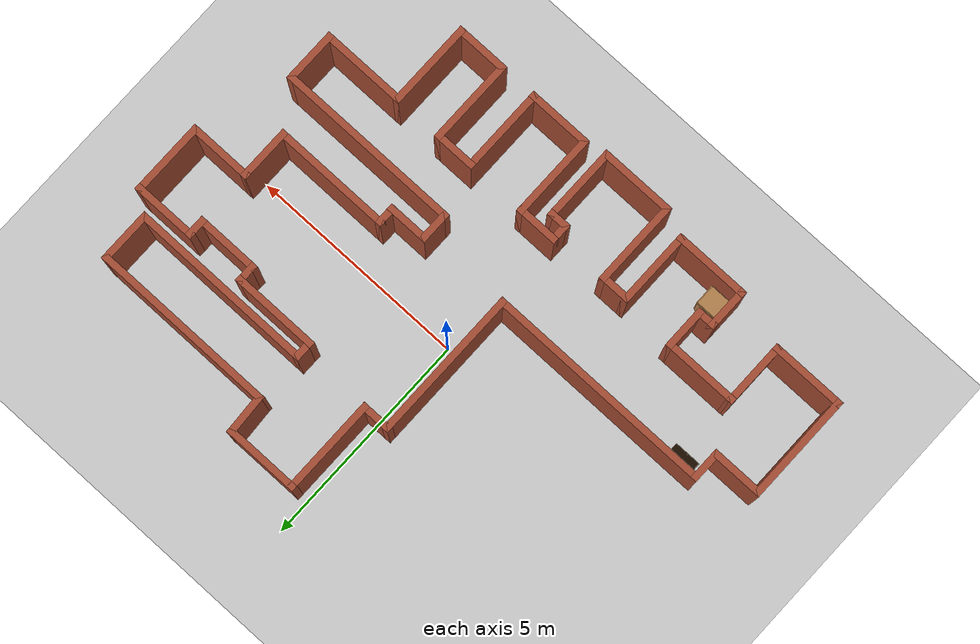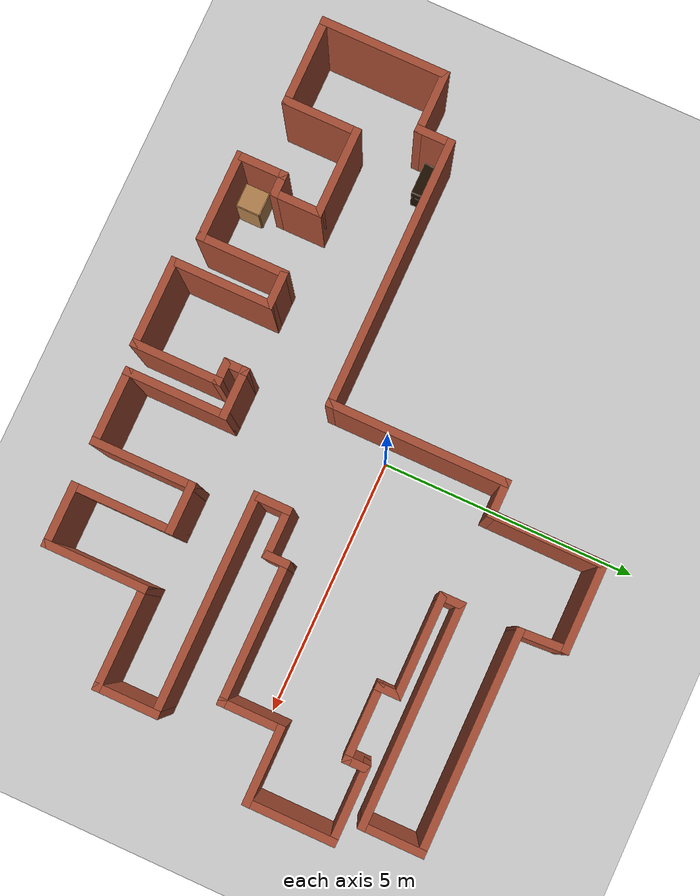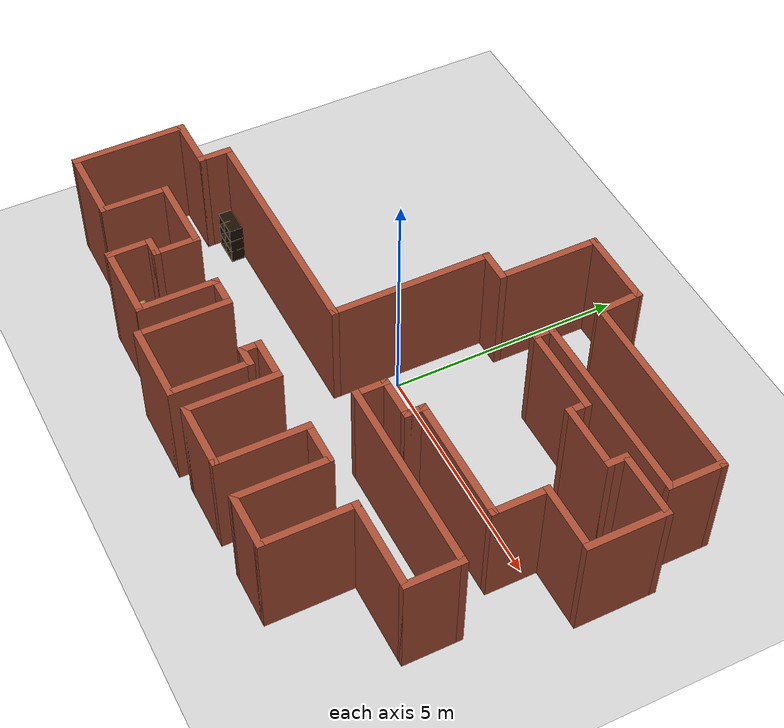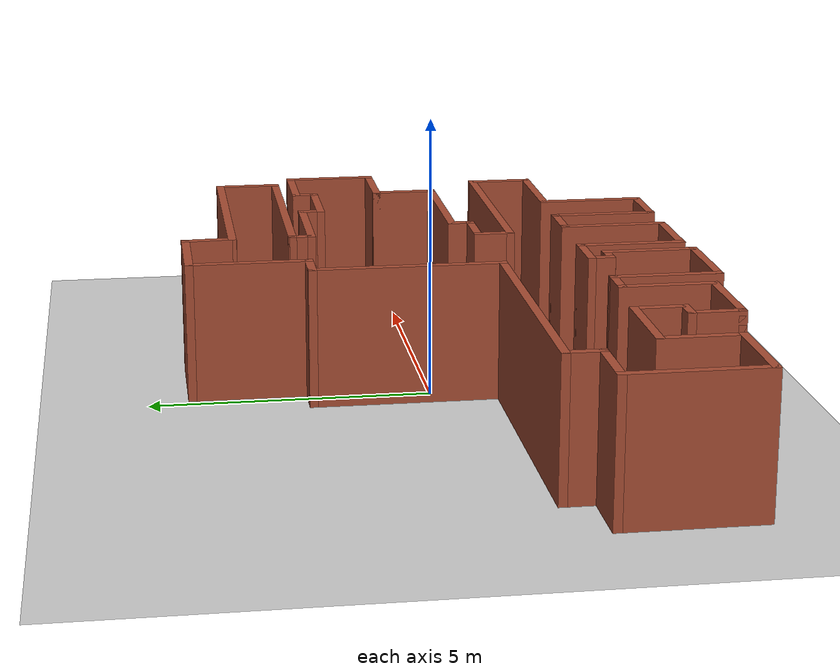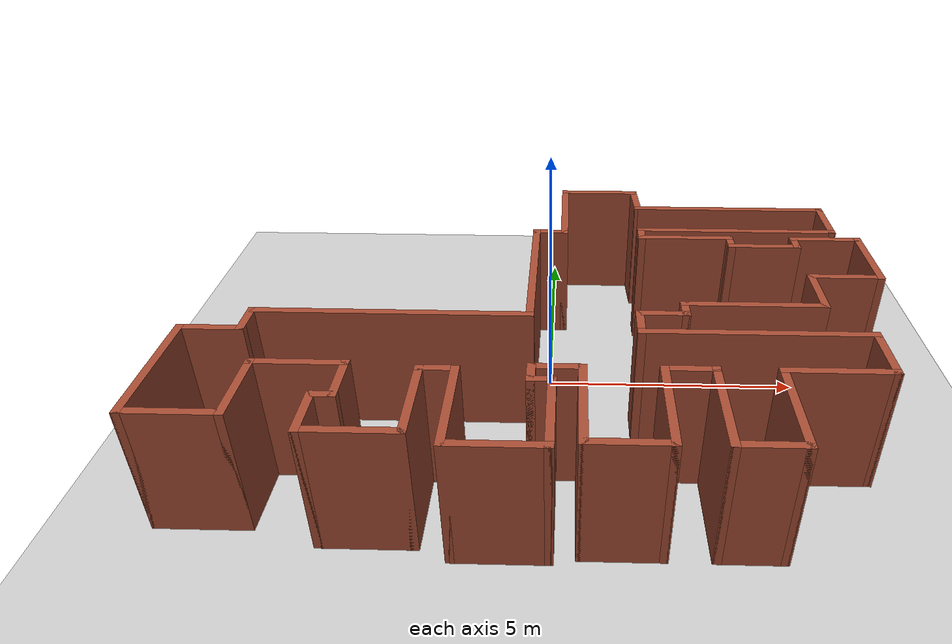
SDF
<sdf version="1.6">
 <world name="default">
  <model name="ground_plane">
   <static>1</static>
   <link name="link">
    <collision name="collision">
     <geometry><plane><normal>0 0 1</normal><size>100 100</size></plane></geometry>
     <surface>
      <contact><collide_bitmask>65535</collide_bitmask></contact>
      <friction><ode><mu>100</mu><mu2>50</mu2></ode></friction>
     </surface>
    </collision>
    <visual name="visual">
     <cast_shadows>0</cast_shadows>
     <geometry><plane><normal>0 0 1</normal><size>100 100</size></plane></geometry>
     <material>
      <script><uri>file://media/materials/scripts/gazebo.material</uri><name>Gazebo/Grey</name></script>
     </material>
    </visual>
   </link>
  </model>
  <model name="map_65">
   <pose>-0.051528 -0.276745 0 0 -0 0</pose>
   <link name="Wall_0">
    <collision name="Wall_0_Collision">
     <geometry><box><size>1.75 0.15 2.5</size></box></geometry>
     <pose>0 0 1.25 0 -0 0</pose>
    </collision>
    <visual name="Wall_0_Visual">
     <pose>0 0 1.25 0 -0 0</pose>
     <geometry><box><size>1.75 0.15 2.5</size></box></geometry>
     <material>
      <script><uri>file://media/materials/scripts/gazebo.material</uri><name>Gazebo/Bricks</name></script>
      <ambient>1 1 1 1</ambient>
     </material>
     <meta><layer>0</layer></meta>
    </visual>
    <pose>1.1 4.49786 0 0 -0 3.14159</pose>
   </link>
   <link name="Wall_1">
    <collision name="Wall_1_Collision">
     <geometry><box><size>2.25 0.15 2.5</size></box></geometry>
     <pose>0 0 1.25 0 -0 0</pose>
    </collision>
    <visual name="Wall_1_Visual">
     <pose>0 0 1.25 0 -0 0</pose>
     <geometry><box><size>2.25 0.15 2.5</size></box></geometry>
     <material>
      <script><uri>file://media/materials/scripts/gazebo.material</uri><name>Gazebo/Bricks</name></script>
      <ambient>1 1 1 1</ambient>
     </material>
     <meta><layer>0</layer></meta>
    </visual>
    <pose>0.3 3.44786 0 0 -0 -1.5708</pose>
   </link>
   <link name="Wall_10">
    <collision name="Wall_10_Collision">
     <geometry><box><size>1.75 0.15 2.5</size></box></geometry>
     <pose>0 0 1.25 0 -0 0</pose>
    </collision>
    <visual name="Wall_10_Visual">
     <pose>0 0 1.25 0 -0 0</pose>
     <geometry><box><size>1.75 0.15 2.5</size></box></geometry>
     <material>
      <script><uri>file://media/materials/scripts/gazebo.material</uri><name>Gazebo/Bricks</name></script>
      <ambient>1 1 1 1</ambient>
     </material>
     <meta><layer>0</layer></meta>
    </visual>
    <pose>-5.7 -3.90214 0 0 -0 0</pose>
   </link>
   <link name="Wall_11">
    <collision name="Wall_11_Collision">
     <geometry><box><size>1.5 0.15 2.5</size></box></geometry>
     <pose>0 0 1.25 0 -0 0</pose>
    </collision>
    <visual name="Wall_11_Visual">
     <pose>0 0 1.25 0 -0 0</pose>
     <geometry><box><size>1.5 0.15 2.5</size></box></geometry>
     <material>
      <script><uri>file://media/materials/scripts/gazebo.material</uri><name>Gazebo/Bricks</name></script>
      <ambient>1 1 1 1</ambient>
     </material>
     <meta><layer>0</layer></meta>
    </visual>
    <pose>-4.9 -3.22714 0 0 -0 1.5708</pose>
   </link>
   <link name="Wall_12">
    <collision name="Wall_12_Collision">
     <geometry><box><size>1.75 0.15 2.5</size></box></geometry>
     <pose>0 0 1.25 0 -0 0</pose>
    </collision>
    <visual name="Wall_12_Visual">
     <pose>0 0 1.25 0 -0 0</pose>
     <geometry><box><size>1.75 0.15 2.5</size></box></geometry>
     <material>
      <script><uri>file://media/materials/scripts/gazebo.material</uri><name>Gazebo/Bricks</name></script>
      <ambient>1 1 1 1</ambient>
     </material>
     <meta><layer>0</layer></meta>
    </visual>
    <pose>-4.1 -2.55214 0 0 -0 0</pose>
   </link>
   <link name="Wall_13">
    <collision name="Wall_13_Collision">
     <geometry><box><size>1 0.15 2.5</size></box></geometry>
     <pose>0 0 1.25 0 -0 0</pose>
    </collision>
    <visual name="Wall_13_Visual">
     <pose>0 0 1.25 0 -0 0</pose>
     <geometry><box><size>1 0.15 2.5</size></box></geometry>
     <material>
      <script><uri>file://media/materials/scripts/gazebo.material</uri><name>Gazebo/Bricks</name></script>
      <ambient>1 1 1 1</ambient>
     </material>
     <meta><layer>0</layer></meta>
    </visual>
    <pose>-3.3 -2.97714 0 0 -0 -1.5708</pose>
   </link>
   <link name="Wall_14">
    <collision name="Wall_14_Collision">
     <geometry><box><size>0.5 0.15 2.5</size></box></geometry>
     <pose>0 0 1.25 0 -0 0</pose>
    </collision>
    <visual name="Wall_14_Visual">
     <pose>0 0 1.25 0 -0 0</pose>
     <geometry><box><size>0.5 0.15 2.5</size></box></geometry>
     <material>
      <script><uri>file://media/materials/scripts/gazebo.material</uri><name>Gazebo/Bricks</name></script>
      <ambient>1 1 1 1</ambient>
     </material>
     <meta><layer>0</layer></meta>
    </visual>
    <pose>-3.475 -3.40214 0 0 -0 3.14159</pose>
   </link>
   <link name="Wall_15">
    <collision name="Wall_15_Collision">
     <geometry><box><size>1 0.15 2.5</size></box></geometry>
     <pose>0 0 1.25 0 -0 0</pose>
    </collision>
    <visual name="Wall_15_Visual">
     <pose>0 0 1.25 0 -0 0</pose>
     <geometry><box><size>1 0.15 2.5</size></box></geometry>
     <material>
      <script><uri>file://media/materials/scripts/gazebo.material</uri><name>Gazebo/Bricks</name></script>
      <ambient>1 1 1 1</ambient>
     </material>
     <meta><layer>0</layer></meta>
    </visual>
    <pose>-3.65 -3.82714 0 0 -0 -1.5708</pose>
   </link>
   <link name="Wall_16">
    <collision name="Wall_16_Collision">
     <geometry><box><size>1.75 0.15 2.5</size></box></geometry>
     <pose>0 0 1.25 0 -0 0</pose>
    </collision>
    <visual name="Wall_16_Visual">
     <pose>0 0 1.25 0 -0 0</pose>
     <geometry><box><size>1.75 0.15 2.5</size></box></geometry>
     <material>
      <script><uri>file://media/materials/scripts/gazebo.material</uri><name>Gazebo/Bricks</name></script>
      <ambient>1 1 1 1</ambient>
     </material>
     <meta><layer>0</layer></meta>
    </visual>
    <pose>-2.85 -4.25214 0 0 -0 0</pose>
   </link>
   <link name="Wall_17">
    <collision name="Wall_17_Collision">
     <geometry><box><size>1.75 0.15 2.5</size></box></geometry>
     <pose>0 0 1.25 0 -0 0</pose>
    </collision>
    <visual name="Wall_17_Visual">
     <pose>0 0 1.25 0 -0 0</pose>
     <geometry><box><size>1.75 0.15 2.5</size></box></geometry>
     <material>
      <script><uri>file://media/materials/scripts/gazebo.material</uri><name>Gazebo/Bricks</name></script>
      <ambient>1 1 1 1</ambient>
     </material>
     <meta><layer>0</layer></meta>
    </visual>
    <pose>-2.05 -3.45214 0 0 -0 1.5708</pose>
   </link>
   <link name="Wall_18">
    <collision name="Wall_18_Collision">
     <geometry><box><size>0.75 0.15 2.5</size></box></geometry>
     <pose>0 0 1.25 0 -0 0</pose>
    </collision>
    <visual name="Wall_18_Visual">
     <pose>0 0 1.25 0 -0 0</pose>
     <geometry><box><size>0.75 0.15 2.5</size></box></geometry>
     <material>
      <script><uri>file://media/materials/scripts/gazebo.material</uri><name>Gazebo/Bricks</name></script>
      <ambient>1 1 1 1</ambient>
     </material>
     <meta><layer>0</layer></meta>
    </visual>
    <pose>-1.75 -2.65214 0 0 -0 0</pose>
   </link>
   <link name="Wall_19">
    <collision name="Wall_19_Collision">
     <geometry><box><size>2 0.15 2.5</size></box></geometry>
     <pose>0 0 1.25 0 -0 0</pose>
    </collision>
    <visual name="Wall_19_Visual">
     <pose>0 0 1.25 0 -0 0</pose>
     <geometry><box><size>2 0.15 2.5</size></box></geometry>
     <material>
      <script><uri>file://media/materials/scripts/gazebo.material</uri><name>Gazebo/Bricks</name></script>
      <ambient>1 1 1 1</ambient>
     </material>
     <meta><layer>0</layer></meta>
    </visual>
    <pose>-1.45 -3.57714 0 0 -0 -1.5708</pose>
   </link>
   <link name="Wall_2">
    <collision name="Wall_2_Collision">
     <geometry><box><size>0.75 0.15 2.5</size></box></geometry>
     <pose>0 0 1.25 0 -0 0</pose>
    </collision>
    <visual name="Wall_2_Visual">
     <pose>0 0 1.25 0 -0 0</pose>
     <geometry><box><size>0.75 0.15 2.5</size></box></geometry>
     <material>
      <script><uri>file://media/materials/scripts/gazebo.material</uri><name>Gazebo/Bricks</name></script>
      <ambient>1 1 1 1</ambient>
     </material>
     <meta><layer>0</layer></meta>
    </visual>
    <pose>-0 2.39786 0 0 -0 3.14159</pose>
   </link>
   <link name="Wall_20">
    <collision name="Wall_20_Collision">
     <geometry><box><size>1.75 0.15 2.5</size></box></geometry>
     <pose>0 0 1.25 0 -0 0</pose>
    </collision>
    <visual name="Wall_20_Visual">
     <pose>0 0 1.25 0 -0 0</pose>
     <geometry><box><size>1.75 0.15 2.5</size></box></geometry>
     <material>
      <script><uri>file://media/materials/scripts/gazebo.material</uri><name>Gazebo/Bricks</name></script>
      <ambient>1 1 1 1</ambient>
     </material>
     <meta><layer>0</layer></meta>
    </visual>
    <pose>-0.65 -4.50214 0 0 -0 0</pose>
   </link>
   <link name="Wall_21">
    <collision name="Wall_21_Collision">
     <geometry><box><size>1.75 0.15 2.5</size></box></geometry>
     <pose>0 0 1.25 0 -0 0</pose>
    </collision>
    <visual name="Wall_21_Visual">
     <pose>0 0 1.25 0 -0 0</pose>
     <geometry><box><size>1.75 0.15 2.5</size></box></geometry>
     <material>
      <script><uri>file://media/materials/scripts/gazebo.material</uri><name>Gazebo/Bricks</name></script>
      <ambient>1 1 1 1</ambient>
     </material>
     <meta><layer>0</layer></meta>
    </visual>
    <pose>0.15 -3.70214 0 0 -0 1.5708</pose>
   </link>
   <link name="Wall_22">
    <collision name="Wall_22_Collision">
     <geometry><box><size>0.5 0.15 2.5</size></box></geometry>
     <pose>0 0 1.25 0 -0 0</pose>
    </collision>
    <visual name="Wall_22_Visual">
     <pose>0 0 1.25 0 -0 0</pose>
     <geometry><box><size>0.5 0.15 2.5</size></box></geometry>
     <material>
      <script><uri>file://media/materials/scripts/gazebo.material</uri><name>Gazebo/Bricks</name></script>
      <ambient>1 1 1 1</ambient>
     </material>
     <meta><layer>0</layer></meta>
    </visual>
    <pose>-0.025 -2.90214 0 0 -0 3.14159</pose>
   </link>
   <link name="Wall_23">
    <collision name="Wall_23_Collision">
     <geometry><box><size>0.5 0.15 2.5</size></box></geometry>
     <pose>0 0 1.25 0 -0 0</pose>
    </collision>
    <visual name="Wall_23_Visual">
     <pose>0 0 1.25 0 -0 0</pose>
     <geometry><box><size>0.5 0.15 2.5</size></box></geometry>
     <material>
      <script><uri>file://media/materials/scripts/gazebo.material</uri><name>Gazebo/Bricks</name></script>
      <ambient>1 1 1 1</ambient>
     </material>
     <meta><layer>0</layer></meta>
    </visual>
    <pose>-0.2 -2.72714 0 0 -0 1.5708</pose>
   </link>
   <link name="Wall_24">
    <collision name="Wall_24_Collision">
     <geometry><box><size>1 0.15 2.5</size></box></geometry>
     <pose>0 0 1.25 0 -0 0</pose>
    </collision>
    <visual name="Wall_24_Visual">
     <pose>0 0 1.25 0 -0 0</pose>
     <geometry><box><size>1 0.15 2.5</size></box></geometry>
     <material>
      <script><uri>file://media/materials/scripts/gazebo.material</uri><name>Gazebo/Bricks</name></script>
      <ambient>1 1 1 1</ambient>
     </material>
     <meta><layer>0</layer></meta>
    </visual>
    <pose>0.225 -2.55214 0 0 -0 0</pose>
   </link>
   <link name="Wall_25">
    <collision name="Wall_25_Collision">
     <geometry><box><size>2 0.15 2.5</size></box></geometry>
     <pose>0 0 1.25 0 -0 0</pose>
    </collision>
    <visual name="Wall_25_Visual">
     <pose>0 0 1.25 0 -0 0</pose>
     <geometry><box><size>2 0.15 2.5</size></box></geometry>
     <material>
      <script><uri>file://media/materials/scripts/gazebo.material</uri><name>Gazebo/Bricks</name></script>
      <ambient>1 1 1 1</ambient>
     </material>
     <meta><layer>0</layer></meta>
    </visual>
    <pose>0.65 -3.47714 0 0 -0 -1.5708</pose>
   </link>
   <link name="Wall_26">
    <collision name="Wall_26_Collision">
     <geometry><box><size>1.5 0.15 2.5</size></box></geometry>
     <pose>0 0 1.25 0 -0 0</pose>
    </collision>
    <visual name="Wall_26_Visual">
     <pose>0 0 1.25 0 -0 0</pose>
     <geometry><box><size>1.5 0.15 2.5</size></box></geometry>
     <material>
      <script><uri>file://media/materials/scripts/gazebo.material</uri><name>Gazebo/Bricks</name></script>
      <ambient>1 1 1 1</ambient>
     </material>
     <meta><layer>0</layer></meta>
    </visual>
    <pose>1.325 -4.40214 0 0 -0 0</pose>
   </link>
   <link name="Wall_27">
    <collision name="Wall_27_Collision">
     <geometry><box><size>2 0.15 2.5</size></box></geometry>
     <pose>0 0 1.25 0 -0 0</pose>
    </collision>
    <visual name="Wall_27_Visual">
     <pose>0 0 1.25 0 -0 0</pose>
     <geometry><box><size>2 0.15 2.5</size></box></geometry>
     <material>
      <script><uri>file://media/materials/scripts/gazebo.material</uri><name>Gazebo/Bricks</name></script>
      <ambient>1 1 1 1</ambient>
     </material>
     <meta><layer>0</layer></meta>
    </visual>
    <pose>2 -3.47714 0 0 -0 1.5708</pose>
   </link>
   <link name="Wall_28">
    <collision name="Wall_28_Collision">
     <geometry><box><size>1 0.15 2.5</size></box></geometry>
     <pose>0 0 1.25 0 -0 0</pose>
    </collision>
    <visual name="Wall_28_Visual">
     <pose>0 0 1.25 0 -0 0</pose>
     <geometry><box><size>1 0.15 2.5</size></box></geometry>
     <material>
      <script><uri>file://media/materials/scripts/gazebo.material</uri><name>Gazebo/Bricks</name></script>
      <ambient>1 1 1 1</ambient>
     </material>
     <meta><layer>0</layer></meta>
    </visual>
    <pose>2.425 -2.55214 0 0 -0 0</pose>
   </link>
   <link name="Wall_29">
    <collision name="Wall_29_Collision">
     <geometry><box><size>2 0.15 2.5</size></box></geometry>
     <pose>0 0 1.25 0 -0 0</pose>
    </collision>
    <visual name="Wall_29_Visual">
     <pose>0 0 1.25 0 -0 0</pose>
     <geometry><box><size>2 0.15 2.5</size></box></geometry>
     <material>
      <script><uri>file://media/materials/scripts/gazebo.material</uri><name>Gazebo/Bricks</name></script>
      <ambient>1 1 1 1</ambient>
     </material>
     <meta><layer>0</layer></meta>
    </visual>
    <pose>2.85 -3.47714 0 0 -0 -1.5708</pose>
   </link>
   <link name="Wall_30">
    <collision name="Wall_30_Collision">
     <geometry><box><size>1.25 0.15 2.5</size></box></geometry>
     <pose>0 0 1.25 0 -0 0</pose>
    </collision>
    <visual name="Wall_30_Visual">
     <pose>0 0 1.25 0 -0 0</pose>
     <geometry><box><size>1.25 0.15 2.5</size></box></geometry>
     <material>
      <script><uri>file://media/materials/scripts/gazebo.material</uri><name>Gazebo/Bricks</name></script>
      <ambient>1 1 1 1</ambient>
     </material>
     <meta><layer>0</layer></meta>
    </visual>
    <pose>3.4 -4.40214 0 0 -0 0</pose>
   </link>
   <link name="Wall_31">
    <collision name="Wall_31_Collision">
     <geometry><box><size>2 0.15 2.5</size></box></geometry>
     <pose>0 0 1.25 0 -0 0</pose>
    </collision>
    <visual name="Wall_31_Visual">
     <pose>0 0 1.25 0 -0 0</pose>
     <geometry><box><size>2 0.15 2.5</size></box></geometry>
     <material>
      <script><uri>file://media/materials/scripts/gazebo.material</uri><name>Gazebo/Bricks</name></script>
      <ambient>1 1 1 1</ambient>
     </material>
     <meta><layer>0</layer></meta>
    </visual>
    <pose>3.95 -3.47714 0 0 -0 1.5708</pose>
   </link>
   <link name="Wall_32">
    <collision name="Wall_32_Collision">
     <geometry><box><size>2 0.15 2.5</size></box></geometry>
     <pose>0 0 1.25 0 -0 0</pose>
    </collision>
    <visual name="Wall_32_Visual">
     <pose>0 0 1.25 0 -0 0</pose>
     <geometry><box><size>2 0.15 2.5</size></box></geometry>
     <material>
      <script><uri>file://media/materials/scripts/gazebo.material</uri><name>Gazebo/Bricks</name></script>
      <ambient>1 1 1 1</ambient>
     </material>
     <meta><layer>0</layer></meta>
    </visual>
    <pose>4.875 -2.55214 0 0 -0 0</pose>
   </link>
   <link name="Wall_35">
    <collision name="Wall_35_Collision">
     <geometry><box><size>1.25 0.15 2.5</size></box></geometry>
     <pose>0 0 1.25 0 -0 0</pose>
    </collision>
    <visual name="Wall_35_Visual">
     <pose>0 0 1.25 0 -0 0</pose>
     <geometry><box><size>1.25 0.15 2.5</size></box></geometry>
     <material>
      <script><uri>file://media/materials/scripts/gazebo.material</uri><name>Gazebo/Bricks</name></script>
      <ambient>1 1 1 1</ambient>
     </material>
     <meta><layer>0</layer></meta>
    </visual>
    <pose>5.8 -2.00214 0 0 -0 1.5708</pose>
   </link>
   <link name="Wall_36">
    <collision name="Wall_36_Collision">
     <geometry><box><size>4.25 0.15 2.5</size></box></geometry>
     <pose>0 0 1.25 0 -0 0</pose>
    </collision>
    <visual name="Wall_36_Visual">
     <pose>0 0 1.25 0 -0 0</pose>
     <geometry><box><size>4.25 0.15 2.5</size></box></geometry>
     <material>
      <script><uri>file://media/materials/scripts/gazebo.material</uri><name>Gazebo/Bricks</name></script>
      <ambient>1 1 1 1</ambient>
     </material>
     <meta><layer>0</layer></meta>
    </visual>
    <pose>3.75 -1.45214 0 0 -0 3.14159</pose>
   </link>
   <link name="Wall_37">
    <collision name="Wall_37_Collision">
     <geometry><box><size>0.75 0.15 2.5</size></box></geometry>
     <pose>0 0 1.25 0 -0 0</pose>
    </collision>
    <visual name="Wall_37_Visual">
     <pose>0 0 1.25 0 -0 0</pose>
     <geometry><box><size>0.75 0.15 2.5</size></box></geometry>
     <material>
      <script><uri>file://media/materials/scripts/gazebo.material</uri><name>Gazebo/Bricks</name></script>
      <ambient>1 1 1 1</ambient>
     </material>
     <meta><layer>0</layer></meta>
    </visual>
    <pose>1.7 -1.15214 0 0 -0 1.5708</pose>
   </link>
   <link name="Wall_38">
    <collision name="Wall_38_Collision">
     <geometry><box><size>1 0.15 2.5</size></box></geometry>
     <pose>0 0 1.25 0 -0 0</pose>
    </collision>
    <visual name="Wall_38_Visual">
     <pose>0 0 1.25 0 -0 0</pose>
     <geometry><box><size>1 0.15 2.5</size></box></geometry>
     <material>
      <script><uri>file://media/materials/scripts/gazebo.material</uri><name>Gazebo/Bricks</name></script>
      <ambient>1 1 1 1</ambient>
     </material>
     <meta><layer>0</layer></meta>
    </visual>
    <pose>2.125 -0.852137 0 0 -0 0</pose>
   </link>
   <link name="Wall_39">
    <collision name="Wall_39_Collision">
     <geometry><box><size>0.5 0.15 2.5</size></box></geometry>
     <pose>0 0 1.25 0 -0 0</pose>
    </collision>
    <visual name="Wall_39_Visual">
     <pose>0 0 1.25 0 -0 0</pose>
     <geometry><box><size>0.5 0.15 2.5</size></box></geometry>
     <material>
      <script><uri>file://media/materials/scripts/gazebo.material</uri><name>Gazebo/Bricks</name></script>
      <ambient>1 1 1 1</ambient>
     </material>
     <meta><layer>0</layer></meta>
    </visual>
    <pose>2.55 -0.677137 0 0 -0 1.5708</pose>
   </link>
   <link name="Wall_40">
    <collision name="Wall_40_Collision">
     <geometry><box><size>2.75 0.15 2.5</size></box></geometry>
     <pose>0 0 1.25 0 -0 0</pose>
    </collision>
    <visual name="Wall_40_Visual">
     <pose>0 0 1.25 0 -0 0</pose>
     <geometry><box><size>2.75 0.15 2.5</size></box></geometry>
     <material>
      <script><uri>file://media/materials/scripts/gazebo.material</uri><name>Gazebo/Bricks</name></script>
      <ambient>1 1 1 1</ambient>
     </material>
     <meta><layer>0</layer></meta>
    </visual>
    <pose>3.85 -0.502137 0 0 -0 0</pose>
   </link>
   <link name="Wall_41">
    <collision name="Wall_41_Collision">
     <geometry><box><size>1.25 0.15 2.5</size></box></geometry>
     <pose>0 0 1.25 0 -0 0</pose>
    </collision>
    <visual name="Wall_41_Visual">
     <pose>0 0 1.25 0 -0 0</pose>
     <geometry><box><size>1.25 0.15 2.5</size></box></geometry>
     <material>
      <script><uri>file://media/materials/scripts/gazebo.material</uri><name>Gazebo/Bricks</name></script>
      <ambient>1 1 1 1</ambient>
     </material>
     <meta><layer>0</layer></meta>
    </visual>
    <pose>5.15 0.047863 0 0 -0 1.5708</pose>
   </link>
   <link name="Wall_42">
    <collision name="Wall_42_Collision">
     <geometry><box><size>1.5 0.15 2.5</size></box></geometry>
     <pose>0 0 1.25 0 -0 0</pose>
    </collision>
    <visual name="Wall_42_Visual">
     <pose>0 0 1.25 0 -0 0</pose>
     <geometry><box><size>1.5 0.15 2.5</size></box></geometry>
     <material>
      <script><uri>file://media/materials/scripts/gazebo.material</uri><name>Gazebo/Bricks</name></script>
      <ambient>1 1 1 1</ambient>
     </material>
     <meta><layer>0</layer></meta>
    </visual>
    <pose>5.825 0.597863 0 0 -0 0</pose>
   </link>
   <link name="Wall_43">
    <collision name="Wall_43_Collision">
     <geometry><box><size>1.75 0.15 2.5</size></box></geometry>
     <pose>0 0 1.25 0 -0 0</pose>
    </collision>
    <visual name="Wall_43_Visual">
     <pose>0 0 1.25 0 -0 0</pose>
     <geometry><box><size>1.75 0.15 2.5</size></box></geometry>
     <material>
      <script><uri>file://media/materials/scripts/gazebo.material</uri><name>Gazebo/Bricks</name></script>
      <ambient>1 1 1 1</ambient>
     </material>
     <meta><layer>0</layer></meta>
    </visual>
    <pose>6.5 1.39786 0 0 -0 1.5708</pose>
   </link>
   <link name="Wall_44">
    <collision name="Wall_44_Collision">
     <geometry><box><size>1.5 0.15 2.5</size></box></geometry>
     <pose>0 0 1.25 0 -0 0</pose>
    </collision>
    <visual name="Wall_44_Visual">
     <pose>0 0 1.25 0 -0 0</pose>
     <geometry><box><size>1.5 0.15 2.5</size></box></geometry>
     <material>
      <script><uri>file://media/materials/scripts/gazebo.material</uri><name>Gazebo/Bricks</name></script>
      <ambient>1 1 1 1</ambient>
     </material>
     <meta><layer>0</layer></meta>
    </visual>
    <pose>5.825 2.19786 0 0 -0 3.14159</pose>
   </link>
   <link name="Wall_45">
    <collision name="Wall_45_Collision">
     <geometry><box><size>0.5 0.15 2.5</size></box></geometry>
     <pose>0 0 1.25 0 -0 0</pose>
    </collision>
    <visual name="Wall_45_Visual">
     <pose>0 0 1.25 0 -0 0</pose>
     <geometry><box><size>0.5 0.15 2.5</size></box></geometry>
     <material>
      <script><uri>file://media/materials/scripts/gazebo.material</uri><name>Gazebo/Bricks</name></script>
      <ambient>1 1 1 1</ambient>
     </material>
     <meta><layer>0</layer></meta>
    </visual>
    <pose>5.15 2.02286 0 0 -0 -1.5708</pose>
   </link>
   <link name="Wall_46">
    <collision name="Wall_46_Collision">
     <geometry><box><size>1.5 0.15 2.5</size></box></geometry>
     <pose>0 0 1.25 0 -0 0</pose>
    </collision>
    <visual name="Wall_46_Visual">
     <pose>0 0 1.25 0 -0 0</pose>
     <geometry><box><size>1.5 0.15 2.5</size></box></geometry>
     <material>
      <script><uri>file://media/materials/scripts/gazebo.material</uri><name>Gazebo/Bricks</name></script>
      <ambient>1 1 1 1</ambient>
     </material>
     <meta><layer>0</layer></meta>
    </visual>
    <pose>4.475 1.84786 0 0 -0 3.14159</pose>
   </link>
   <link name="Wall_47">
    <collision name="Wall_47_Collision">
     <geometry><box><size>0.5 0.15 2.5</size></box></geometry>
     <pose>0 0 1.25 0 -0 0</pose>
    </collision>
    <visual name="Wall_47_Visual">
     <pose>0 0 1.25 0 -0 0</pose>
     <geometry><box><size>0.5 0.15 2.5</size></box></geometry>
     <material>
      <script><uri>file://media/materials/scripts/gazebo.material</uri><name>Gazebo/Bricks</name></script>
      <ambient>1 1 1 1</ambient>
     </material>
     <meta><layer>0</layer></meta>
    </visual>
    <pose>3.8 2.02286 0 0 -0 1.5708</pose>
   </link>
   <link name="Wall_48">
    <collision name="Wall_48_Collision">
     <geometry><box><size>2 0.15 2.5</size></box></geometry>
     <pose>0 0 1.25 0 -0 0</pose>
    </collision>
    <visual name="Wall_48_Visual">
     <pose>0 0 1.25 0 -0 0</pose>
     <geometry><box><size>2 0.15 2.5</size></box></geometry>
     <material>
      <script><uri>file://media/materials/scripts/gazebo.material</uri><name>Gazebo/Bricks</name></script>
      <ambient>1 1 1 1</ambient>
     </material>
     <meta><layer>0</layer></meta>
    </visual>
    <pose>2.875 2.19786 0 0 -0 3.14159</pose>
   </link>
   <link name="Wall_49">
    <collision name="Wall_49_Collision">
     <geometry><box><size>0.5 0.15 2.5</size></box></geometry>
     <pose>0 0 1.25 0 -0 0</pose>
    </collision>
    <visual name="Wall_49_Visual">
     <pose>0 0 1.25 0 -0 0</pose>
     <geometry><box><size>0.5 0.15 2.5</size></box></geometry>
     <material>
      <script><uri>file://media/materials/scripts/gazebo.material</uri><name>Gazebo/Bricks</name></script>
      <ambient>1 1 1 1</ambient>
     </material>
     <meta><layer>0</layer></meta>
    </visual>
    <pose>1.95 2.37286 0 0 -0 1.5708</pose>
   </link>
   <link name="Wall_5">
    <collision name="Wall_5_Collision">
     <geometry><box><size>3.5 0.15 2.5</size></box></geometry>
     <pose>0 0 1.25 0 -0 0</pose>
    </collision>
    <visual name="Wall_5_Visual">
     <pose>0 0 1.25 0 -0 0</pose>
     <geometry><box><size>3.5 0.15 2.5</size></box></geometry>
     <material>
      <script><uri>file://media/materials/scripts/gazebo.material</uri><name>Gazebo/Bricks</name></script>
      <ambient>1 1 1 1</ambient>
     </material>
     <meta><layer>0</layer></meta>
    </visual>
    <pose>-0.3 0.722863 0 0 -0 -1.5708</pose>
   </link>
   <link name="Wall_50">
    <collision name="Wall_50_Collision">
     <geometry><box><size>4.25 0.15 2.5</size></box></geometry>
     <pose>0 0 1.25 0 -0 0</pose>
    </collision>
    <visual name="Wall_50_Visual">
     <pose>0 0 1.25 0 -0 0</pose>
     <geometry><box><size>4.25 0.15 2.5</size></box></geometry>
     <material>
      <script><uri>file://media/materials/scripts/gazebo.material</uri><name>Gazebo/Bricks</name></script>
      <ambient>1 1 1 1</ambient>
     </material>
     <meta><layer>0</layer></meta>
    </visual>
    <pose>4 2.54786 0 0 -0 0</pose>
   </link>
   <link name="Wall_51">
    <collision name="Wall_51_Collision">
     <geometry><box><size>1.25 0.15 2.5</size></box></geometry>
     <pose>0 0 1.25 0 -0 0</pose>
    </collision>
    <visual name="Wall_51_Visual">
     <pose>0 0 1.25 0 -0 0</pose>
     <geometry><box><size>1.25 0.15 2.5</size></box></geometry>
     <material>
      <script><uri>file://media/materials/scripts/gazebo.material</uri><name>Gazebo/Bricks</name></script>
      <ambient>1 1 1 1</ambient>
     </material>
     <meta><layer>0</layer></meta>
    </visual>
    <pose>6.05 3.09786 0 0 -0 1.5708</pose>
   </link>
   <link name="Wall_52">
    <collision name="Wall_52_Collision">
     <geometry><box><size>4.25 0.15 2.5</size></box></geometry>
     <pose>0 0 1.25 0 -0 0</pose>
    </collision>
    <visual name="Wall_52_Visual">
     <pose>0 0 1.25 0 -0 0</pose>
     <geometry><box><size>4.25 0.15 2.5</size></box></geometry>
     <material>
      <script><uri>file://media/materials/scripts/gazebo.material</uri><name>Gazebo/Bricks</name></script>
      <ambient>1 1 1 1</ambient>
     </material>
     <meta><layer>0</layer></meta>
    </visual>
    <pose>4 3.64786 0 0 -0 3.14159</pose>
   </link>
   <link name="Wall_53">
    <collision name="Wall_53_Collision">
     <geometry><box><size>1.00147 0.15 2.5</size></box></geometry>
     <pose>0 0 1.25 0 -0 0</pose>
    </collision>
    <visual name="Wall_53_Visual">
     <pose>0 0 1.25 0 -0 0</pose>
     <geometry><box><size>1.00147 0.15 2.5</size></box></geometry>
     <material>
      <script><uri>file://media/materials/scripts/gazebo.material</uri><name>Gazebo/Bricks</name></script>
      <ambient>1 1 1 1</ambient>
     </material>
     <meta><layer>0</layer></meta>
    </visual>
    <pose>1.925 4.07286 0 0 -0 1.62955</pose>
   </link>
   <link name="Wall_6">
    <collision name="Wall_6_Collision">
     <geometry><box><size>5.25 0.15 2.5</size></box></geometry>
     <pose>0 0 1.25 0 -0 0</pose>
    </collision>
    <visual name="Wall_6_Visual">
     <pose>0 0 1.25 0 -0 0</pose>
     <geometry><box><size>5.25 0.15 2.5</size></box></geometry>
     <material>
      <script><uri>file://media/materials/scripts/gazebo.material</uri><name>Gazebo/Bricks</name></script>
      <ambient>1 1 1 1</ambient>
     </material>
     <meta><layer>0</layer></meta>
    </visual>
    <pose>-2.85 -0.952137 0 0 -0 3.14159</pose>
   </link>
   <link name="Wall_7">
    <collision name="Wall_7_Collision">
     <geometry><box><size>0.75 0.15 2.5</size></box></geometry>
     <pose>0 0 1.25 0 -0 0</pose>
    </collision>
    <visual name="Wall_7_Visual">
     <pose>0 0 1.25 0 -0 0</pose>
     <geometry><box><size>0.75 0.15 2.5</size></box></geometry>
     <material>
      <script><uri>file://media/materials/scripts/gazebo.material</uri><name>Gazebo/Bricks</name></script>
      <ambient>1 1 1 1</ambient>
     </material>
     <meta><layer>0</layer></meta>
    </visual>
    <pose>-5.4 -1.25214 0 0 -0 -1.5708</pose>
   </link>
   <link name="Wall_8">
    <collision name="Wall_8_Collision">
     <geometry><box><size>1.25 0.15 2.5</size></box></geometry>
     <pose>0 0 1.25 0 -0 0</pose>
    </collision>
    <visual name="Wall_8_Visual">
     <pose>0 0 1.25 0 -0 0</pose>
     <geometry><box><size>1.25 0.15 2.5</size></box></geometry>
     <material>
      <script><uri>file://media/materials/scripts/gazebo.material</uri><name>Gazebo/Bricks</name></script>
      <ambient>1 1 1 1</ambient>
     </material>
     <meta><layer>0</layer></meta>
    </visual>
    <pose>-5.95 -1.55214 0 0 -0 3.14159</pose>
   </link>
   <link name="Wall_9">
    <collision name="Wall_9_Collision">
     <geometry><box><size>2.5 0.15 2.5</size></box></geometry>
     <pose>0 0 1.25 0 -0 0</pose>
    </collision>
    <visual name="Wall_9_Visual">
     <pose>0 0 1.25 0 -0 0</pose>
     <geometry><box><size>2.5 0.15 2.5</size></box></geometry>
     <material>
      <script><uri>file://media/materials/scripts/gazebo.material</uri><name>Gazebo/Bricks</name></script>
      <ambient>1 1 1 1</ambient>
     </material>
     <meta><layer>0</layer></meta>
    </visual>
    <pose>-6.5 -2.72714 0 0 -0 -1.5708</pose>
   </link>
   <static>1</static>
  </model>
  <model name="6_Cube_StorageE">
   <link name="Wall_0">
    <pose>0 0 0.01 0 -0 0</pose>
    <inertial>
     <mass>1.6201</mass>
     <inertia><ixx>0.0119</ixx><iyy>0.0631</iyy><izz>0.0513</izz><ixy>0</ixy><ixz>0</ixz><iyz>0</iyz></inertia>
    </inertial>
    <collision name="Wall_0_Collision"><geometry><box><size>0.616 0.296 0.02</size></box></geometry></collision>
    <visual name="Wall_0_Visual">
     <geometry><box><size>0.616 0.296 0.02</size></box></geometry>
     <material>
      <script><uri>file://media/materials/scripts/gazebo.material</uri><name>Gazebo/Grey</name></script>
      <ambient>0.105882 0.0509804 0 1</ambient>
     </material>
    </visual>
   </link>
   <joint name="0_2" type="fixed">
    <pose>-0.308 0 0 0 -0 0</pose>
    <parent>Wall_2</parent>
    <child>Wall_0</child>
    <axis>
     <xyz>1 0 0</xyz>
     <use_parent_model_frame>0</use_parent_model_frame>
     <limit><lower>-1e+16</lower><upper>1e+16</upper></limit>
    </axis>
   </joint>
   <joint name="0_12" type="fixed">
    <parent>Wall_12</parent>
    <child>Wall_0</child>
    <axis>
     <xyz>0 0 1</xyz>
     <use_parent_model_frame>0</use_parent_model_frame>
     <limit><lower>-1e+16</lower><upper>1e+16</upper></limit>
    </axis>
   </joint>
   <joint name="0_4" type="fixed">
    <pose>0.308 0 0 0 -0 0</pose>
    <parent>Wall_4</parent>
    <child>Wall_0</child>
    <axis>
     <xyz>1 0 0</xyz>
     <use_parent_model_frame>0</use_parent_model_frame>
     <limit><lower>-1e+16</lower><upper>1e+16</upper></limit>
    </axis>
   </joint>
   <link name="Wall_10">
    <pose>0 0 0.61 0 -0 0</pose>
    <inertial>
     <mass>1.6201</mass>
     <inertia><ixx>0.0119</ixx><iyy>0.0631</iyy><izz>0.0513</izz><ixy>0</ixy><ixz>0</ixz><iyz>0</iyz></inertia>
    </inertial>
    <collision name="Wall_10_Collision"><geometry><box><size>0.616 0.296 0.02</size></box></geometry></collision>
    <visual name="Wall_10_Visual">
     <geometry><box><size>0.616 0.296 0.02</size></box></geometry>
     <material>
      <script><uri>file://media/materials/scripts/gazebo.material</uri><name>Gazebo/Grey</name></script>
      <ambient>0.105882 0.0509804 0 1</ambient>
     </material>
    </visual>
   </link>
   <joint name="10_2" type="fixed">
    <pose>-0.308 0 0 0 -0 0</pose>
    <parent>Wall_2</parent>
    <child>Wall_10</child>
    <axis>
     <xyz>1 0 0</xyz>
     <use_parent_model_frame>0</use_parent_model_frame>
     <limit><lower>-1e+16</lower><upper>1e+16</upper></limit>
    </axis>
   </joint>
   <joint name="10_12" type="fixed">
    <parent>Wall_12</parent>
    <child>Wall_10</child>
    <axis>
     <xyz>0 0 1</xyz>
     <use_parent_model_frame>0</use_parent_model_frame>
     <limit><lower>-1e+16</lower><upper>1e+16</upper></limit>
    </axis>
   </joint>
   <joint name="10_4" type="fixed">
    <pose>0.308 0 0 0 -0 0</pose>
    <parent>Wall_4</parent>
    <child>Wall_10</child>
    <axis>
     <xyz>1 0 0</xyz>
     <use_parent_model_frame>0</use_parent_model_frame>
     <limit><lower>-1e+16</lower><upper>1e+16</upper></limit>
    </axis>
   </joint>
   <link name="Wall_12">
    <pose>0 0 0.4575 0 -0 0</pose>
    <inertial>
     <mass>2.4065</mass>
     <inertia><ixx>0.0177</ixx><iyy>0.1855</iyy><izz>0.168</izz><ixy>0</ixy><ixz>0</ixz><iyz>0</iyz></inertia>
    </inertial>
    <collision name="Wall_12_Collision"><geometry><box><size>0.02 0.296 0.915</size></box></geometry></collision>
    <visual name="Wall_12_Visual">
     <geometry><box><size>0.02 0.296 0.915</size></box></geometry>
     <material>
      <script><uri>file://media/materials/scripts/gazebo.material</uri><name>Gazebo/Grey</name></script>
      <ambient>0.105882 0.0509804 0 1</ambient>
     </material>
    </visual>
   </link>
   <link name="Wall_2">
    <pose>-0.298 0 0.4575 0 -0 0</pose>
    <inertial>
     <mass>2.4065</mass>
     <inertia><ixx>0.0177</ixx><iyy>0.1855</iyy><izz>0.168</izz><ixy>0</ixy><ixz>0</ixz><iyz>0</iyz></inertia>
    </inertial>
    <collision name="Wall_2_Collision"><geometry><box><size>0.02 0.296 0.915</size></box></geometry></collision>
    <visual name="Wall_2_Visual">
     <geometry><box><size>0.02 0.296 0.915</size></box></geometry>
     <material>
      <script><uri>file://media/materials/scripts/gazebo.material</uri><name>Gazebo/Grey</name></script>
      <ambient>0.105882 0.0509804 0 1</ambient>
     </material>
    </visual>
   </link>
   <link name="Wall_4">
    <pose>0.298 0 0.4575 0 -0 0</pose>
    <inertial>
     <mass>2.4065</mass>
     <inertia><ixx>0.0177</ixx><iyy>0.1855</iyy><izz>0.168</izz><ixy>0</ixy><ixz>0</ixz><iyz>0</iyz></inertia>
    </inertial>
    <collision name="Wall_4_Collision"><geometry><box><size>0.02 0.296 0.915</size></box></geometry></collision>
    <visual name="Wall_4_Visual">
     <geometry><box><size>0.02 0.296 0.915</size></box></geometry>
     <material>
      <script><uri>file://media/materials/scripts/gazebo.material</uri><name>Gazebo/Grey</name></script>
      <ambient>0.105882 0.0509804 0 1</ambient>
     </material>
    </visual>
   </link>
   <link name="Wall_6">
    <pose>0 0 0.905 0 -0 0</pose>
    <inertial>
     <mass>1.6201</mass>
     <inertia><ixx>0.0119</ixx><iyy>0.0631</iyy><izz>0.0513</izz><ixy>0</ixy><ixz>0</ixz><iyz>0</iyz></inertia>
    </inertial>
    <collision name="Wall_6_Collision"><geometry><box><size>0.616 0.296 0.02</size></box></geometry></collision>
    <visual name="Wall_6_Visual">
     <geometry><box><size>0.616 0.296 0.02</size></box></geometry>
     <material>
      <script><uri>file://media/materials/scripts/gazebo.material</uri><name>Gazebo/Grey</name></script>
      <ambient>0.105882 0.0509804 0 1</ambient>
     </material>
    </visual>
   </link>
   <joint name="6_2" type="fixed">
    <pose>-0.308 0 0 0 -0 0</pose>
    <parent>Wall_2</parent>
    <child>Wall_6</child>
    <axis>
     <xyz>2 0 0</xyz>
     <use_parent_model_frame>0</use_parent_model_frame>
     <limit><lower>-1e+16</lower><upper>1e+16</upper></limit>
    </axis>
   </joint>
   <joint name="6_12" type="fixed">
    <parent>Wall_12</parent>
    <child>Wall_6</child>
    <axis>
     <xyz>0 0 1</xyz>
     <use_parent_model_frame>0</use_parent_model_frame>
     <limit><lower>-1e+16</lower><upper>1e+16</upper></limit>
    </axis>
   </joint>
   <joint name="6_4" type="fixed">
    <pose>0.308 0 0 0 -0 0</pose>
    <parent>Wall_4</parent>
    <child>Wall_6</child>
    <axis>
     <xyz>1 0 0</xyz>
     <use_parent_model_frame>0</use_parent_model_frame>
     <limit><lower>-1e+16</lower><upper>1e+16</upper></limit>
    </axis>
   </joint>
   <link name="Wall_8">
    <pose>0 0 0.305 0 -0 0</pose>
    <inertial>
     <mass>1.6201</mass>
     <inertia><ixx>0.0119</ixx><iyy>0.0631</iyy><izz>0.0513</izz><ixy>0</ixy><ixz>0</ixz><iyz>0</iyz></inertia>
    </inertial>
    <collision name="Wall_8_Collision"><geometry><box><size>0.616 0.296 0.02</size></box></geometry></collision>
    <visual name="Wall_8_Visual">
     <geometry><box><size>0.616 0.296 0.02</size></box></geometry>
     <material>
      <script><uri>file://media/materials/scripts/gazebo.material</uri><name>Gazebo/Grey</name></script>
      <ambient>0.105882 0.0509804 0 1</ambient>
     </material>
    </visual>
   </link>
   <joint name="8_2" type="fixed">
    <pose>-0.308 0 0 0 -0 0</pose>
    <parent>Wall_2</parent>
    <child>Wall_8</child>
    <axis>
     <xyz>1 0 0</xyz>
     <use_parent_model_frame>0</use_parent_model_frame>
     <limit><lower>-1e+16</lower><upper>1e+16</upper></limit>
    </axis>
   </joint>
   <joint name="8_12" type="fixed">
    <parent>Wall_12</parent>
    <child>Wall_8</child>
    <axis>
     <xyz>0 0 1</xyz>
     <use_parent_model_frame>0</use_parent_model_frame>
     <limit><lower>-1e+16</lower><upper>1e+16</upper></limit>
    </axis>
   </joint>
   <joint name="8_4" type="fixed">
    <pose>0.308 0 0 0 -0 0</pose>
    <parent>Wall_4</parent>
    <child>Wall_8</child>
    <axis>
     <xyz>1 0 0</xyz>
     <use_parent_model_frame>0</use_parent_model_frame>
     <limit><lower>-1e+16</lower><upper>1e+16</upper></limit>
    </axis>
   </joint>
   <static>1</static>
   <pose>-5.02803 -1.4728 0 0 -0 0</pose>
  </model>
  <model name="cabinet">
   <static>1</static>
   <link name="cabinet_bottom_plate">
    <inertial>
     <pose>0 0 -1 0 -0 0</pose>
     <inertia><ixx>2.05</ixx><ixy>0</ixy><ixz>0</ixz><iyy>2.05</iyy><iyz>0</iyz><izz>2.05</izz></inertia>
     <mass>25</mass>
    </inertial>
    <collision name="cabinet_bottom_plate_geom">
     <pose>0 0 0.01 0 -0 0</pose>
     <geometry><box><size>0.45 0.45 0.02</size></box></geometry>
    </collision>
    <visual name="cabinet_bottom_plate_geom_visual">
     <pose>0 0 0.01 0 -0 0</pose>
     <geometry><box><size>0.45 0.45 0.02</size></box></geometry>
     <material>
      <script><uri>file://media/materials/scripts/gazebo.material</uri><name>Gazebo/Wood</name></script>
     </material>
    </visual>
    <collision name="cabinet_bottom_plate_geom_cabinet_back_plate">
     <pose>0.235 0 0.51 0 -0 0</pose>
     <geometry><box><size>0.02 0.45 1.02</size></box></geometry>
    </collision>
    <visual name="cabinet_bottom_plate_geom_cabinet_back_plate_visual">
     <pose>0.235 0 0.51 0 -0 0</pose>
     <geometry><box><size>0.02 0.45 1.02</size></box></geometry>
     <material>
      <script><uri>file://media/materials/scripts/gazebo.material</uri><name>Gazebo/Wood</name></script>
     </material>
    </visual>
    <collision name="cabinet_bottom_plate_geom_cabinet_left_plate">
     <pose>0 0.235 0.51 0 -0 0</pose>
     <geometry><box><size>0.45 0.02 1.02</size></box></geometry>
    </collision>
    <visual name="cabinet_bottom_plate_geom_cabinet_left_plate_visual">
     <pose>0 0.235 0.51 0 -0 0</pose>
     <geometry><box><size>0.45 0.02 1.02</size></box></geometry>
     <material>
      <script><uri>file://media/materials/scripts/gazebo.material</uri><name>Gazebo/Wood</name></script>
     </material>
    </visual>
    <collision name="cabinet_bottom_plate_geom_cabinet_middle_plate">
     <pose>0 0 0.51 0 -0 0</pose>
     <geometry><box><size>0.45 0.45 0.02</size></box></geometry>
    </collision>
    <visual name="cabinet_bottom_plate_geom_cabinet_middle_plate_visual">
     <pose>0 0 0.51 0 -0 0</pose>
     <geometry><box><size>0.45 0.45 0.02</size></box></geometry>
     <material>
      <script><uri>file://media/materials/scripts/gazebo.material</uri><name>Gazebo/Wood</name></script>
     </material>
    </visual>
    <collision name="cabinet_bottom_plate_geom_cabinet_right_plate">
     <pose>0 -0.235 0.51 0 -0 0</pose>
     <geometry><box><size>0.45 0.02 1.02</size></box></geometry>
    </collision>
    <visual name="cabinet_bottom_plate_geom_cabinet_right_plate_visual">
     <pose>0 -0.235 0.51 0 -0 0</pose>
     <geometry><box><size>0.45 0.02 1.02</size></box></geometry>
     <material>
      <script><uri>file://media/materials/scripts/gazebo.material</uri><name>Gazebo/Wood</name></script>
     </material>
    </visual>
    <collision name="cabinet_bottom_plate_geom_cabinet_top_plate">
     <pose>0 0 1.01 0 -0 0</pose>
     <geometry><box><size>0.45 0.45 0.02</size></box></geometry>
    </collision>
    <visual name="cabinet_bottom_plate_geom_cabinet_top_plate_visual">
     <pose>0 0 1.01 0 -0 0</pose>
     <geometry><box><size>0.45 0.45 0.02</size></box></geometry>
     <material>
      <script><uri>file://media/materials/scripts/gazebo.material</uri><name>Gazebo/Wood</name></script>
     </material>
    </visual>
   </link>
   <pose>-3.37125 -4.22049 0 0 -0 0</pose>
  </model>
 </world>
</sdf>
